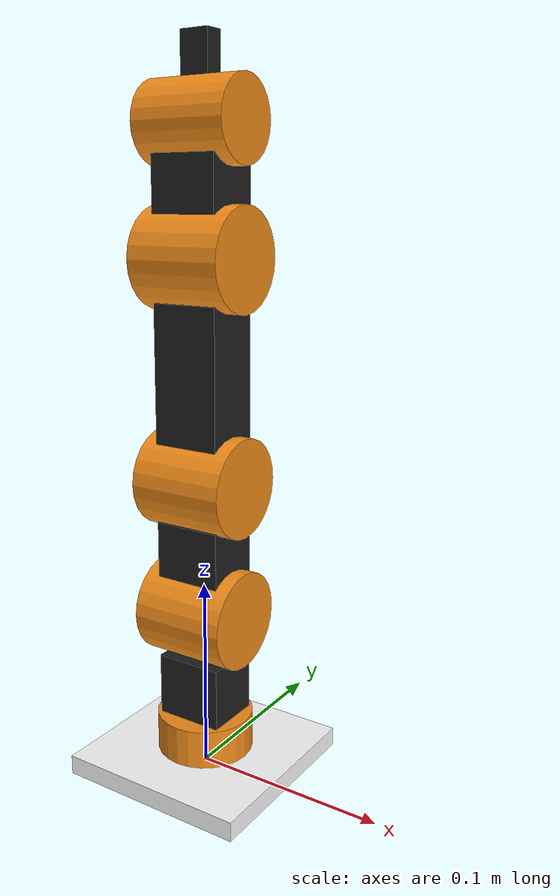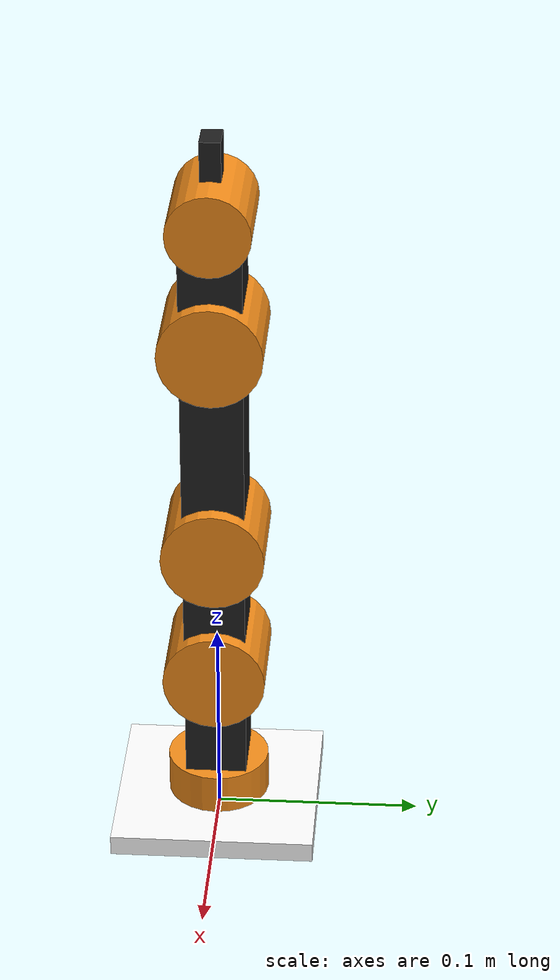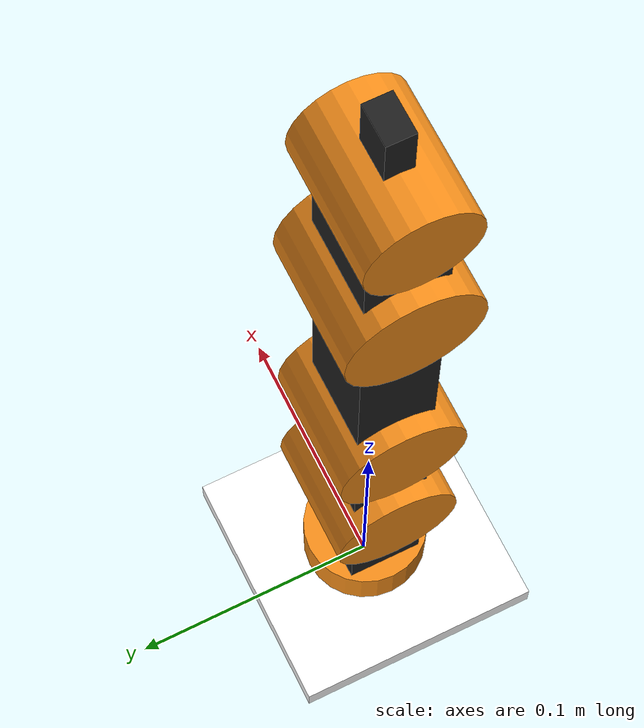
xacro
<?xml version="1.0"?>
	<robot name="simple_model" xmlns:xacro="http://www.ros.org/wiki/xacro">

	<!-- Include materials -->
		<material name="Black">
			<color rgba="0.5 0.0 0.0 1.0"/>
		</material>

		<material name="Red">
			<color rgba="0.8 0.0 0.0 1.0"/>
		</material>

		<material name="White">
			<color rgba="1.0 1.0 1.0 1.0"/>
		</material>

		<xacro:property name="deg_to_rad" value="0.01745329251994329577"/>

		<!-- Define constants -->
		<xacro:property name="M_PI" value="3.14159"/>
		<xacro:property name="M_PI_HALVES" value="${M_PI / 2}"/>

		<!-- Second link properties -->
		<xacro:property name="link_len" value="0.035"/>
		<xacro:property name="link_width" value="0.03"/>

		<xacro:property name="second_link_height" value="0.036"/>
		<xacro:property name="third_link_height" value="0.029"/>
		<xacro:property name="fourth_link_height" value="0.069"/>
		<xacro:property name="fifth_link_height" value="0.027"/>
		<xacro:property name="ee_link_height" value="0.02"/>

		<xacro:macro name="inertial_matrix" params="mass">
			<inertial>
				<mass value="${mass}"/>
				<inertia ixx="1.0" ixy="0.0" ixz="0.0" iyy="0.5" iyz="0.0" izz="1.0"/>
			</inertial>
		</xacro:macro>

		<xacro:macro name="transmission_block" params="joint_name">
			<transmission name="tran1">
				<type>transmission_interface/SimpleTransmission</type>
				<joint name="${joint_name}">
					<hardwareInterface>hardware_interface/PositionJointInterface</hardwareInterface>
				</joint>
				<actuator name="motor1">
					<hardwareInterface>hardware_interface/PositionJointInterface</hardwareInterface>
					<mechanicalReduction>1</mechanicalReduction>
				</actuator>
			</transmission>
		</xacro:macro>

		<link name="world"/>

		<!-- Base link -->
		<link name="base_link">
			<visual>
				<origin xyz="0 0 0.005" rpy="0 0 0"/>
				<geometry>
					<box size="0.1 0.1 0.01"/>
				</geometry>
				<material name="White"/>
			</visual>
			<collision>
				<origin xyz="0 0 0.005" rpy="0 0 0"/>
				<geometry>
					<box size="0.1 0.1 0.01"/>
				</geometry>
			</collision>
			<xacro:inertial_matrix mass="1"/>
		</link>
		<gazebo reference="base_link">
			<material>Gazebo/Black</material>
		</gazebo>

		<link name="second_joint_placeholder">
			<visual>
				<origin xyz="0 0 0.0095" rpy="0 0 0"/>
				<geometry>
					<cylinder length="0.021" radius="0.025"/>
				</geometry>
			</visual>
			<collision>
				<origin xyz="0 0 0.0095" rpy="0 0 0"/>
				<geometry>
					<cylinder length="0.021" radius="0.025"/>
				</geometry>
			</collision>
		</link>
		<gazebo reference="second_joint_placeholder">
			<material>Gazebo/Orange</material>
		</gazebo>

		<link name="second_link">
			<visual>
				<origin xyz="0 0 0.034" rpy="0 0 0"/>
				<geometry>
					<box size="${link_len} ${link_width} ${second_link_height}"/>
				</geometry>
			</visual>
			<collision>
				<origin xyz="0 0 0.034" rpy="0 0 0"/>
				<geometry>
					<box size="${link_len} ${link_width} ${second_link_height}"/>
				</geometry>
			</collision>
		<xacro:inertial_matrix mass="1"/>
		</link>
		<gazebo reference="second_link">
			<material>Gazebo/Black</material>
		</gazebo>

		<link name="third_joint_placeholder">
			<visual>
				<origin xyz="0 0 0" rpy="0 0 0"/>
				<geometry>
					<cylinder length="0.05" radius="0.025"/>
				</geometry>
			</visual>
			<collision>
				<origin xyz="0 0 0" rpy="1 0 0"/>
				<geometry>
					<cylinder length="0.05" radius="0.025"/>
				</geometry>
			</collision>
		</link>
		<gazebo reference="third_joint_placeholder">
			<material>Gazebo/Orange</material>
		</gazebo>

		<link name="third_link">
			<visual>
				<origin xyz="0 0 0" rpy="0 0 0"/>
				<geometry>
					<box size="${third_link_height} ${link_width} ${link_len}"/>
				</geometry>
			</visual>
			<collision>
				<origin xyz="0 0 0" rpy="0 0 0"/>
				<geometry>
					<box size="${third_link_height} ${link_width} ${link_len}"/>
				</geometry>
			</collision>
		<xacro:inertial_matrix mass="1"/>
		</link>
		<gazebo reference="third_link">
			<material>Gazebo/Black</material>
		</gazebo>

		<link name="fourth_joint_placeholder">
			<visual>
				<origin xyz="0 0 0" rpy="0 0 0"/>
				<geometry>
					<cylinder length="0.05" radius="0.025"/>
				</geometry>
			</visual>
			<collision>
				<origin xyz="0 0 0" rpy="0 0 0"/>
				<geometry>
					<cylinder length="0.05" radius="0.025"/>
				</geometry>
			</collision>
			<xacro:inertial_matrix mass="1"/>
		</link>
		<gazebo reference="fourth_joint_placeholder">
			<material>Gazebo/Orange</material>
		</gazebo>

		<link name="fourth_link">
			<visual>
				<origin xyz="0 0 0" rpy="0 0 0"/>
				<geometry>
					<box size="${fourth_link_height} ${link_width} ${link_len}"/>
				</geometry>
			</visual>
			<collision>
				<origin xyz="0 0 0" rpy="0 0 0"/>
				<geometry>
					<box size="${fourth_link_height} ${link_width} ${link_len}"/>
				</geometry>
			</collision>
			<xacro:inertial_matrix mass="1"/>
		</link>
		<gazebo reference="fourth_link">
			<material>Gazebo/Black</material>
		</gazebo>

		<link name="fifth_joint_placeholder">
			<visual>
				<origin xyz="0 0 0" rpy="0 0 0"/>
				<geometry>
					<cylinder length="0.05" radius="0.025"/>
				</geometry>
			</visual>
			<collision>
				<origin xyz="0 0 0" rpy="0 0 0"/>
				<geometry>
					<cylinder length="0.05" radius="0.025"/>
				</geometry>
			</collision>
			<xacro:inertial_matrix mass="1"/>
		</link>
		<gazebo reference="fifth_joint_placeholder">
			<material>Gazebo/Orange</material>
		</gazebo>

		<link name="fifth_link">
			<visual>
				<origin xyz="0 0 0" rpy="0 0 0"/>
				<geometry>
					<box size="${fifth_link_height} ${link_width} ${link_len}"/>
				</geometry>
			</visual>
			<collision>
				<origin xyz="0 0 0" rpy="0 0 0"/>
				<geometry>
					<box size="${fifth_link_height} ${link_width} ${link_len}"/>
				</geometry>
			</collision>
			<xacro:inertial_matrix mass="1"/>
		</link>
		<gazebo reference="fifth_link">
			<material>Gazebo/Black</material>
		</gazebo>

		<link name="sixth_joint_placeholder">
			<visual>
				<origin xyz="0 0 0" rpy="0 0 0"/>
				<geometry>
					<cylinder length="0.05" radius="0.02"/>
				</geometry>
			</visual>
			<collision>
				<origin xyz="0 0 0" rpy="0 0 0"/>
				<geometry>
					<cylinder length="0.05" radius="0.02"/>
				</geometry>
			</collision>
			<xacro:inertial_matrix mass="1"/>
		</link>
		<gazebo reference="sixth_joint_placeholder">
			<material>Gazebo/Orange</material>
		</gazebo>

		<link name="end_effector">
			<visual>
				<origin xyz="0 0 0" rpy="0 0 0"/>
				<geometry>
					<box size="${ee_link_height} 0.010 0.015"/>
				</geometry>
			</visual>
			<collision>
				<origin xyz="0 0 0" rpy="0 0 0"/>
				<geometry>
					<box size="${ee_link_height} 0.010 0.015"/>
				</geometry>
			</collision>
			<xacro:inertial_matrix mass="1"/>
		</link>
		<gazebo reference="end_effector">
			<material>Gazebo/Black</material>
		</gazebo>

		<!-- JOINTS -->
		<joint name="fixed" type="fixed">
			<parent link="world"/>
			<child link="base_link"/>
		</joint>

		<joint name="second_joint" type="revolute">
			<origin xyz="0 0 0.01" rpy="0 0 0"/>
			<parent link="base_link"/>
			<child link="second_joint_placeholder"/>
			<axis xyz="0 0 1"/>
			<limit effort="300" velocity="1" lower="${-M_PI_HALVES}" upper="${M_PI_HALVES}"/>
		</joint>

		<joint name="second_fixed" type="fixed">
			<parent link="second_joint_placeholder"/>
			<child link="second_link"/>
		</joint>

		<joint name="third_joint" type="revolute">
			<origin xyz="0 0 0.076" rpy="0 ${-M_PI_HALVES} 0"/>
			<parent link="second_link"/>
			<child link="third_joint_placeholder"/>
			<axis xyz="0 0 1"/>
			<limit effort="300" velocity="1" lower="${-M_PI / 4}" upper="${M_PI / 4}"/>
		</joint>

		<joint name="third_fixed" type="fixed">
			<origin xyz="0.034 0 0" rpy="0 0 0"/> <!-- Radius 0.03 -->
			<parent link="third_joint_placeholder"/>
			<child link="third_link"/>
		</joint>

		<joint name="fourth_joint" type="revolute">
			<origin xyz="0.035 0 0" rpy="0 0 0"/>
			<parent link="third_link"/>
			<child link="fourth_joint_placeholder"/>
			<axis xyz="0 0 1"/>
			<limit effort="300" velocity="1" lower="${-M_PI_HALVES}" upper="${M_PI_HALVES}"/>
		</joint>

		<joint name="fourth_fixed" type="fixed">
			<origin xyz="0.054 0 0" rpy="0 0 0"/>
			<parent link="fourth_joint_placeholder"/>
			<child link="fourth_link"/>
		</joint>

		<joint name="fifth_joint" type="revolute">
			<origin xyz="0.055 0 0" rpy="0 0 0"/>
			<parent link="fourth_link"/>
			<child link="fifth_joint_placeholder"/>
			<axis xyz="0 0 1"/>
			<limit effort="300" velocity="1" lower="${-M_PI_HALVES}" upper="${M_PI_HALVES}"/>
		</joint>

		<joint name="fifth_fixed" type="fixed">
			<origin xyz="0.034 0 0" rpy="0 0 0"/>
			<parent link="fifth_joint_placeholder"/>
			<child link="fifth_link"/>
		</joint>

		<joint name="sixth_joint" type="revolute">
			<origin xyz="0.0275 0 0" rpy="0 0 0"/>
			<parent link="fifth_link"/>
			<child link="sixth_joint_placeholder"/>
			<axis xyz="0 0 1"/>
			<limit effort="300" velocity="1" lower="${-M_PI_HALVES}" upper="${M_PI_HALVES}"/>
		</joint>

		<joint name="ee_joint" type="fixed">
			<origin xyz="0.029 0 0" rpy="0 0 0"/>
			<parent link="sixth_joint_placeholder"/>
			<child link="end_effector"/>
		</joint>

		<xacro:transmission_block joint_name="second_joint"/>
		<xacro:transmission_block joint_name="third_joint"/>
		<xacro:transmission_block joint_name="fourth_joint"/>
		<xacro:transmission_block joint_name="fifth_joint"/>
		<xacro:transmission_block joint_name="sixth_joint"/>

		<gazebo>
			<plugin name="gazebo_ros_control" filename="libgazebo_ros_control.so">
				<robotNamespace>/5dof_robot</robotNamespace>
			</plugin>
		</gazebo>
	</robot>
